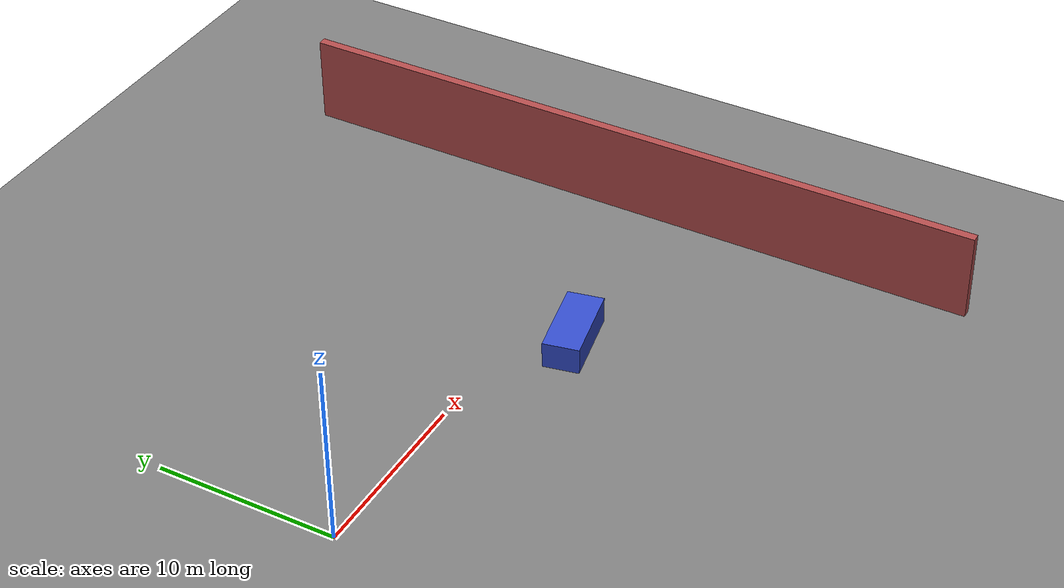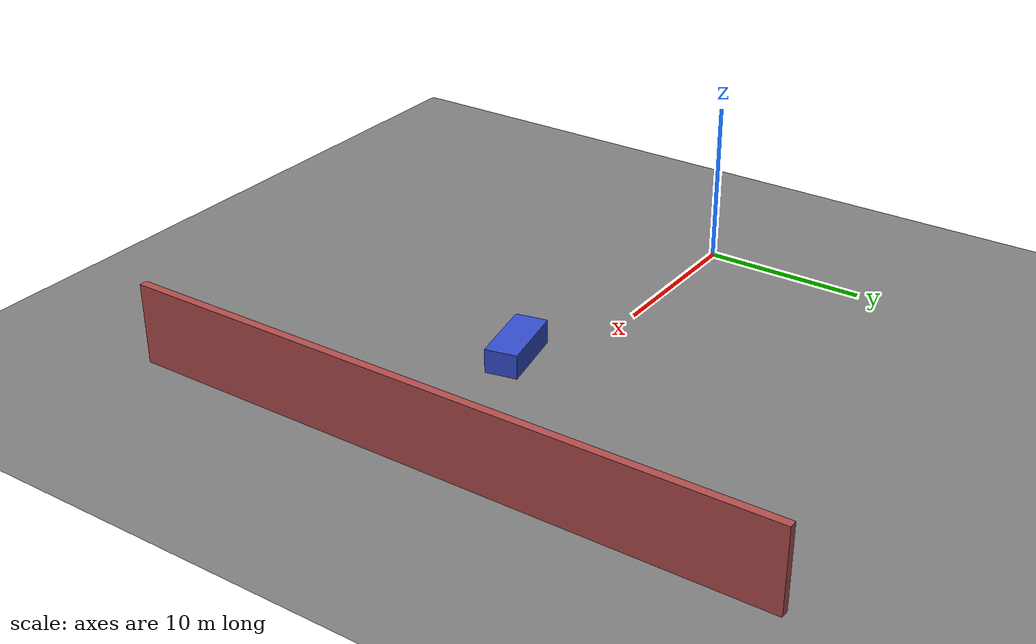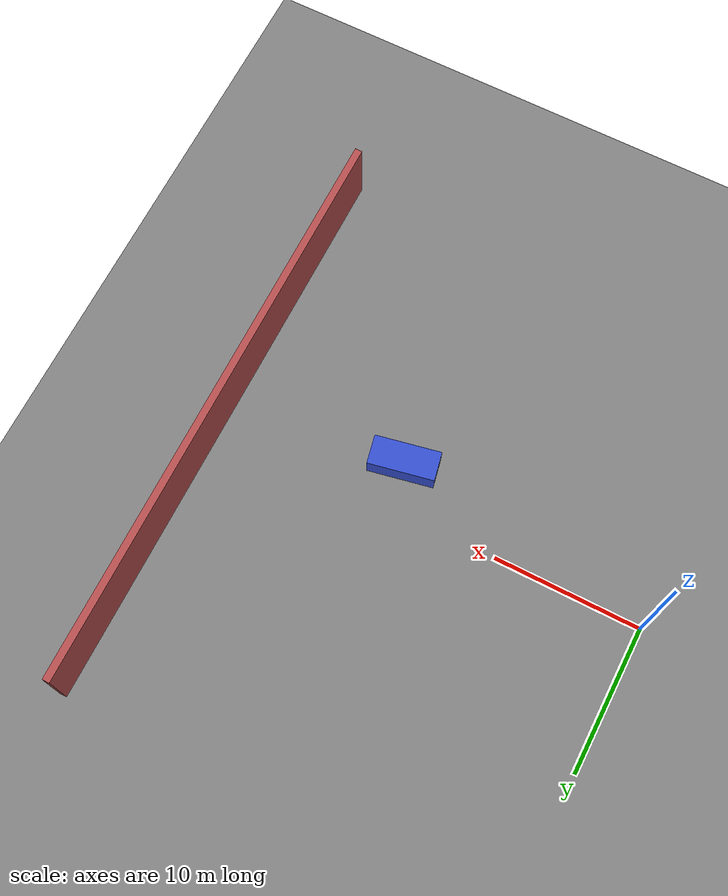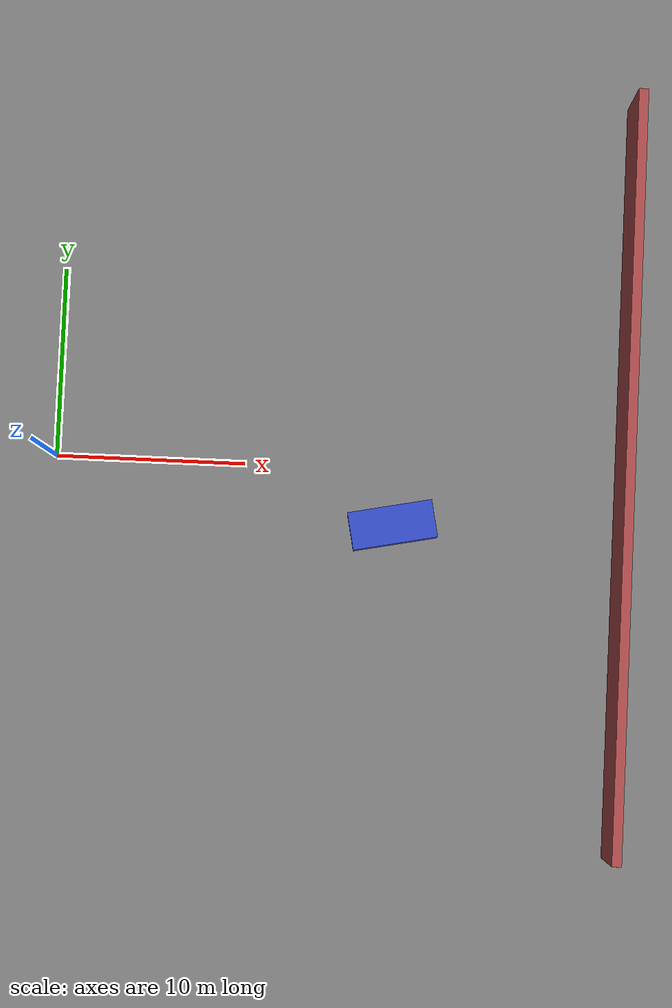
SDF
<?xml version="1.0"?>
<sdf version="1.9">
  <world name="radar_demo_world">
    <!-- Physics engine -->
    <physics name="1ms" type="ignored">
      <max_step_size>0.001</max_step_size>
      <real_time_factor>1.0</real_time_factor>
    </physics>

    <!-- Standard plugins -->
    <plugin
      filename="gz-sim-physics-system"
      name="gz::sim::systems::Physics">
    </plugin>
    <plugin
      filename="gz-sim-user-commands-system"
      name="gz::sim::systems::UserCommands">
    </plugin>
    <plugin
      filename="gz-sim-scene-broadcaster-system"
      name="gz::sim::systems::SceneBroadcaster">
    </plugin>

    <!-- Lighting -->
    <light type="directional" name="sun">
      <cast_shadows>true</cast_shadows>
      <pose>0 0 50 0 0 0</pose>
      <diffuse>0.8 0.8 0.8 1</diffuse>
      <specular>0.2 0.2 0.2 1</specular>
      <direction>-0.5 0.1 -0.9</direction>
    </light>

    <!-- Ground Plane -->
    <model name="ground_plane">
      <static>true</static>
      <link name="link">
        <collision name="collision">
          <geometry>
            <plane>
              <normal>0 0 1</normal>
              <size>500 500</size>
            </plane>
          </geometry>
        </collision>
        <visual name="visual">
          <geometry>
            <plane>
              <normal>0 0 1</normal>
              <size>500 500</size>
            </plane>
          </geometry>
          <material>
            <ambient>0.3 0.3 0.3 1</ambient>
            <diffuse>0.5 0.5 0.5 1</diffuse>
            <specular>0.1 0.1 0.1 1</specular>
          </material>
        </visual>
      </link>
    </model>

    <!-- Front Flat Wall (for Cosine Doppler Profile Verification at 30m) -->
    <model name="flat_wall">
      <static>true</static>
      <pose>30 0 2.5 0 0 0</pose>
      <link name="link">
        <collision name="collision">
          <geometry>
            <box>
              <size>0.5 40.0 5.0</size>
            </box>
          </geometry>
        </collision>
        <visual name="visual">
          <geometry>
            <box>
              <size>0.5 40.0 5.0</size>
            </box>
          </geometry>
          <material>
            <ambient>0.6 0.2 0.2 1</ambient>
            <diffuse>0.7 0.3 0.3 1</diffuse>
          </material>
        </visual>
      </link>
    </model>

    <!-- Static Target Vehicle / Obstacle -->
    <model name="obstacle_car">
      <static>true</static>
      <pose>18.0 -3.0 0.75 0 0 0.2</pose>
      <link name="link">
        <collision name="collision">
          <geometry>
            <box>
              <size>4.5 2.0 1.5</size>
            </box>
          </geometry>
        </collision>
        <visual name="visual">
          <geometry>
            <box>
              <size>4.5 2.0 1.5</size>
            </box>
          </geometry>
          <material>
            <ambient>0.1 0.2 0.7 1</ambient>
            <diffuse>0.2 0.3 0.8 1</diffuse>
          </material>
        </visual>
      </link>
    </model>

    <!-- Moving Ego Platform with Downward-Tilted 4D Radar -->
    <model name="ego_radar_platform">
      <pose>0 0 1.5 0 0.785398 0</pose>  <!-- Mounted at 1.5m height, tilted 45 deg downward -->
      <link name="base_link">
        <inertial>
          <mass>10.0</mass>
          <inertia>
            <ixx>0.1</ixx>
            <iyy>0.1</iyy>
            <izz>0.1</izz>
          </inertia>
        </inertial>
        <visual name="visual">
          <geometry>
            <box>
              <size>0.2 0.2 0.1</size>
            </box>
          </geometry>
          <material>
            <ambient>0.8 0.8 0.1 1</ambient>
            <diffuse>0.9 0.9 0.2 1</diffuse>
          </material>
        </visual>
        <collision name="collision">
          <geometry>
            <box>
              <size>0.2 0.2 0.1</size>
            </box>
          </geometry>
        </collision>

        <!-- Attach 4D Radar System Plugin -->
        <plugin
          filename="libgazebo_4d_radar_plugin.so"
          name="gazebo_4d_radar_plugin::Gazebo4DRadarPlugin">
          <sensor_name>radar</sensor_name>
          <frame_id>radar_link</frame_id>
          <scan_topic>/radar/scan</scan_topic>
          <pointcloud_topic>/radar/points</pointcloud_topic>
          <cycle_rate_hz>20.0</cycle_rate_hz>
          <max_range_m>150.0</max_range_m>
          <min_range_m>0.3</min_range_m>
          <fov_azimuth_rad>2.0944</fov_azimuth_rad>
          <fov_elevation_rad>0.5236</fov_elevation_rad>
          <v_max_mps>55.55</v_max_mps>
          <enable_doppler_folding>true</enable_doppler_folding>
          <closing_velocity_positive>false</closing_velocity_positive>
          <range_sigma_m>0.05</range_sigma_m>
          <azimuth_sigma_rad>0.0052</azimuth_sigma_rad>
          <elevation_sigma_rad>0.0105</elevation_sigma_rad>
          <range_rate_sigma_mps>0.05</range_rate_sigma_mps>
          <false_detection_rate_per_cycle>2.0</false_detection_rate_per_cycle>
          <detection_dropout_probability>0.03</detection_dropout_probability>
          <min_rcs_threshold>-30.0</min_rcs_threshold>
          <ray_samples_azimuth>120</ray_samples_azimuth>
          <ray_samples_elevation>30</ray_samples_elevation>
        </plugin>
      </link>
    </model>
  </world>
</sdf>
